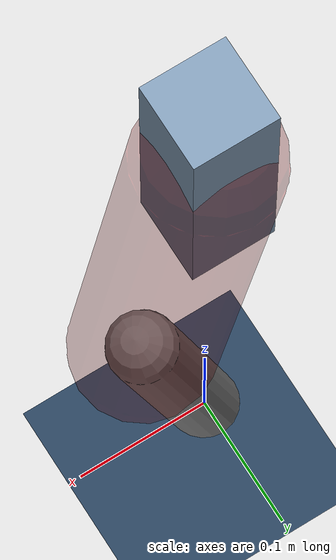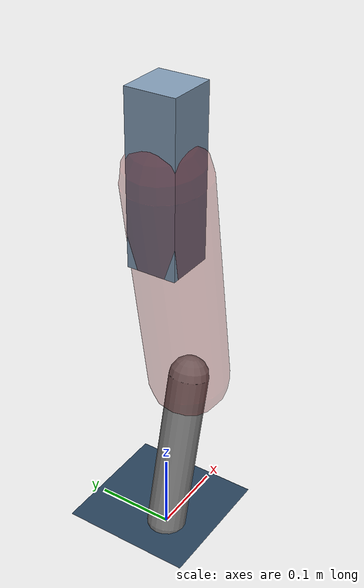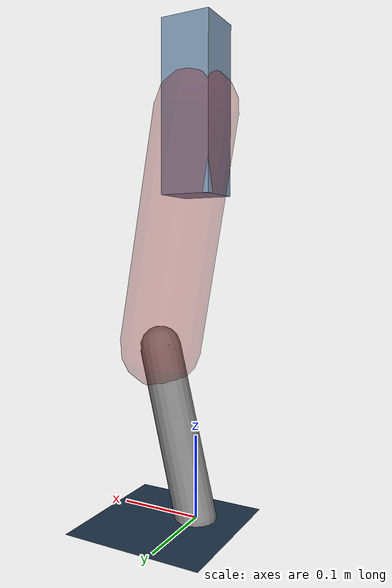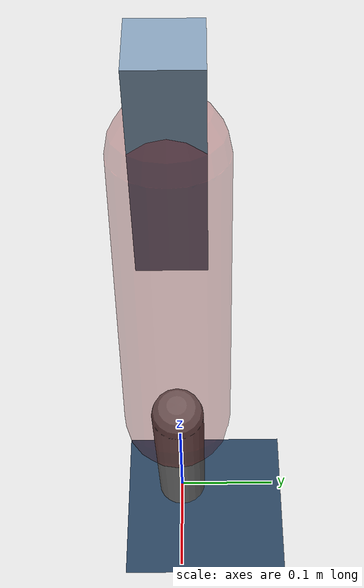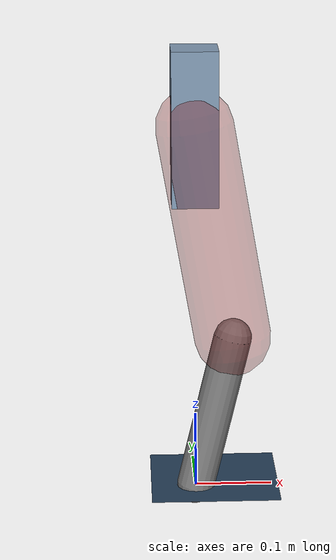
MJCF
<mujoco model="Hopper2D">
	<compiler inertiafromgeom="true" angle="radian" />
	<option timestep="0.001" integrator="implicit" cone="elliptic" solver="Newton" tolerance="1e-10" />

	<default>
		<geom contype="1" conaffinity="1" condim="3" friction="2 0.005 0.0001" solref="0.005 1" />
		<joint limited="true" damping="0.1" />
	</default>

	<asset>
		<texture name="skybox" type="skybox" builtin="gradient" rgb1=".4 .6 .8" rgb2="0 0 0" width="800" height="800" />
		<texture name="grid" type="2d" builtin="checker" rgb1=".1 .2 .3" rgb2=".2 .3 .4" width="300" height="300" mark="edge" markrgb=".2 .3 .4" />
		<material name="ground" texture="grid" texrepeat="1 1" texuniform="true" reflectance="0.1" />
		<material name="leg" rgba="0.5 0.6 0.7 1" />
	</asset>

	<worldbody>

		<geom name="floor" type="plane" size="5 5 0.25" material="ground" />

		<light directional="false" diffuse="0.8 0.8 0.8" specular="0.3 0.3 0.3" pos="0 0 2" dir="0 0 -1" />
		<light mode="targetbodycom" target="base" directional="false" diffuse="0.8 0.8 0.8" specular="0.3 0.3 0.3" pos="0 0 2" dir="0 0 -1" />

		<camera name="fixed" pos="0 -2 1" xyaxes="1 0 0 0 0 1" />
		<camera name="tracking" mode="trackcom" pos="0 -3 1" />

		<body name="root" pos="0 0 0.48612235683491256">
			<joint name="slide_x" type="slide" axis="1 0 0" range="-100 100" />
			<joint name="slide_z" type="slide" axis="0 0 1" range="0 10" />

			<body name="base" pos="0 0 0">
				<geom name="torso" type="box" size="0.03 0.03 0.1" mass="2.415" material="leg" />

				<body name="link1" pos="0 0 0" euler="0 1.398520033628324 0">
					<joint type="hinge" axis="0 -1 0" pos="0 0 0" name="hinge1" limited="true" range="-3.14 3.14" stiffness="0" damping="0.1" />
					<geom name="thigh" type="capsule" fromto="0 0 0 0.28560237252237136 0 0" size="0.05" rgba="0.5 0 0 0.3" mass="0.9500264058104028" />

					<body name="link2" pos="0.28560237252237136 0 0" euler="0 0.4069900582737819 0">
						<joint type="hinge" axis="0 -1 0" pos="0 0 0" name="hinge2" limited="true" range="-3.14 3.14" stiffness="0" damping="0.1" />
						<geom name="shank" type="capsule" fromto="0 0 0 0.21051998431254124 0 0" size="0.025" mass="0.409715987450033" />

					</body>
				</body>
			</body>
		</body>
	</worldbody>

	<actuator>
		<motor name="torque1" joint="hinge1" ctrlrange="-86.74735862943754 86.74735862943754" ctrllimited="true" gear="1" />
		<motor name="torque2" joint="hinge2" ctrlrange="-86.33532400589255 86.33532400589255" ctrllimited="true" gear="1" />
	</actuator>
</mujoco>
